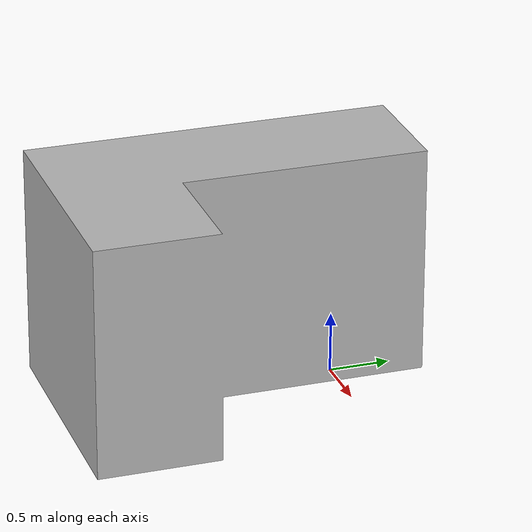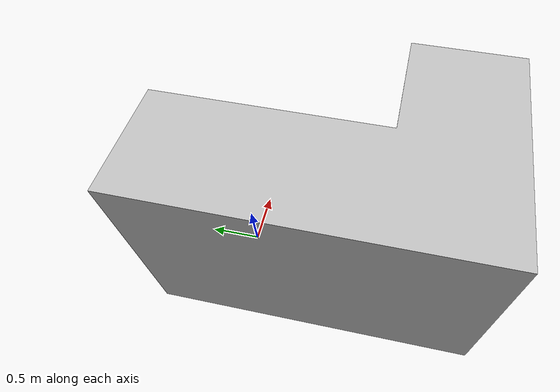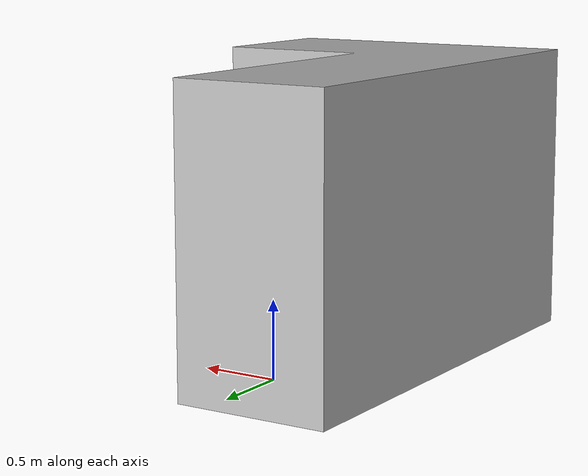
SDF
<?xml version="1.0" ?>
<sdf version="1.5">
  <model name='obs08'>
    <static>true</static>
    <link name="link">
      <collision name='collision'>
        <geometry>
          <mesh>
            <uri>model://obs08/mesh/Obs08.stl</uri>
            <scale>0.01 0.01 0.01</scale>
          </mesh>
        </geometry>
      </collision>

      <visual name='visual'>
        <geometry>
          <mesh>
            <uri>model://obs08/mesh/Obs08.stl</uri>
            <scale>0.01 0.01 0.01</scale>
          </mesh>
        </geometry>
        <material>
          <script>
            <uri>model://obs08/materials/scripts</uri>
            <uri>model://obs08/materials/textures</uri>
            <name>buildMat/Tex8</name>
          </script>
        </material>
      </visual>
    </link>
  </model>
</sdf>
